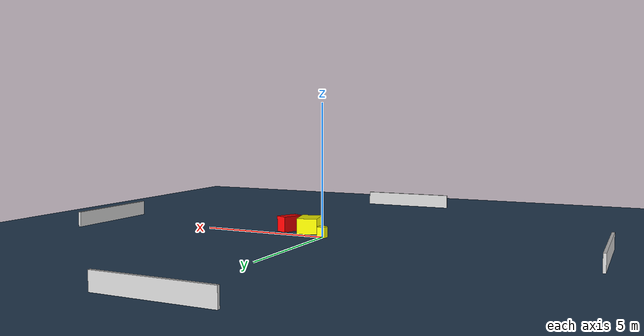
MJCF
<?xml version="1.0" ?>
<mujoco model="generated_environment">
  <option timestep="0.01" integrator="RK4" cone="elliptic"/>
  <default>
    <geom density="1"/>
  </default>
  <asset>
    <texture builtin="gradient" height="3072" name="skybox" rgb1="0.3 0.5 0.7" rgb2="0 0 0" type="skybox" width="512"/>
    <texture builtin="checker" height="300" name="groundplane" rgb1="0.2 0.3 0.4" rgb2="0.1 0.2 0.3" type="2d" width="300"/>
    <material name="groundplane" reflectance="0.2" texrepeat="5 5" texture="groundplane"/>
  </asset>
  <worldbody>
    <light dir="0 0 -1" directional="true" pos="0 0 1.5"/>
    <geom condim="3" friction="0.5 0.005 0.001" material="groundplane" name="floor" pos="0 0 0" size="0 0 0.05" type="plane"/>
    <body name="walls">
      <geom name="wall_1" condim="4" pos="-10.0 0.0 0.3" rgba="0.800000011920929 0.800000011920929 0.800000011920929 1.0" size="0.05 2.0 0.3" type="box"/>
      <geom name="wall_2" condim="4" pos="10.0 0.0 0.3" rgba="0.800000011920929 0.800000011920929 0.800000011920929 1.0" size="0.05 2.0 0.3" type="box"/>
      <geom name="wall_3" condim="4" pos="0.0 -10.0 0.3" rgba="0.800000011920929 0.800000011920929 0.800000011920929 1.0" size="2.0 0.05 0.3" type="box"/>
      <geom name="wall_4" condim="4" pos="0.0 10.0 0.3" rgba="0.800000011920929 0.800000011920929 0.800000011920929 1.0" size="2.0 0.05 0.3" type="box"/>
    </body>
    <body name="robot">
      <joint name="joint_x" type="slide" pos="0 0 0" axis="1 0 0"/>
      <joint name="joint_y" type="slide" pos="0 0 0" axis="0 1 0"/>
      <geom name="robot" type="cylinder" pos="0.0 0.0 0.2" size="0.2 0.2 0.0" mass="5.0" friction="1.0 0.005 0.0001" condim="4" rgba="1.0 1.0 0.0 1.0"/>
    </body>
    <body name="obstacle_1_movable">
      <geom name="obstacle_1_movable" condim="4" pos="0.9129933254760044 -0.7876727098610053 0.3" euler="0 0 283.7162110101258" friction="0.0 0.005 0.001" rgba="1.0 1.0 0.0 1.0" size="0.5372938482995795 0.3984650340535078 0.3" type="box" mass="0.1"/>
      <joint type="free"/>
    </body>
    <body name="obstacle_2_static">
      <geom name="obstacle_2_static" condim="4" pos="1.798247717622126 -0.8083980761814131 0.3" euler="0 0 244.22476369589504" friction="0.0 0.005 0.001" rgba="1.0 0.0 0.0 1.0" size="0.42774782331409117 0.2360322982866882 0.3" type="box"/>
    </body>
  </worldbody>
  <actuator>
    <motor name="actuator_x" joint="joint_x" gear="1" ctrlrange="-1 1"/>
    <motor name="actuator_y" joint="joint_y" gear="1" ctrlrange="-1 1"/>
  </actuator>
</mujoco>
